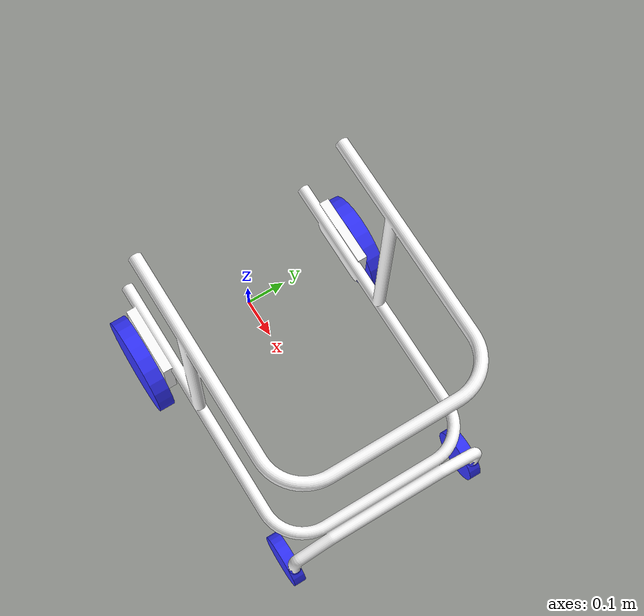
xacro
<?xml version="1.0"?>
<robot xmlns:xacro="http://www.ros.org/wiki/xacro">

  <xacro:include filename="inertial_macros.xacro"/>

  <material name="white">
    <color rgba="1 1 1 1"/>
  </material>

  <material name="orange">
    <color rgba="1 0.3 0.1 1"/>
  </material>

  <material name="blue">
    <color rgba="0.2 0.2 1 1"/>
  </material>

  <material name="black">
    <color rgba="0 0 0 1"/>
  </material>

  <!-- BASE LINK -->
  <link name="base_link">

  </link>

  <!-- Path to mesh -->
  <xacro:property name="mesh_path" value="srs/my_bot/description/girello.stl" />

  <!-- CHASSIS LINK -->
  <joint name="chassis_joint" type="fixed">
    <parent link="base_link"/>
    <child link="chassis"/>
    <origin xyz="-0.1 0 0"/>
  </joint>

  <link name="chassis">
    <visual>
      <origin xyz="0.1 0 0.115" rpy="${pi/2} 0 -${pi/2}"/>
      <geometry>
        <mesh filename="${mesh_path}" scale="0.01 0.01 0.01"/>
      </geometry>
      <material name="white"/>
    </visual>
    <collision>
      <origin xyz="0.4 0 0.115"/>
      <geometry>
        <box size="0.7 0.46 0.15"/>
      </geometry>
    </collision>
    <xacro:inertial_box mass="0.5" x="0.5" y="0.7" z="0.15">
      <origin xyz="0.15 0 0.115" rpy="0 0 0"/>
    </xacro:inertial_box>
  </link>

  <gazebo reference="chassis">
    <material>Gazebo/White</material>
  </gazebo>

  <!-- LEFT WHEEL LINK -->
  <joint name="left_wheel_joint" type="continuous">
    <parent link="base_link"/>
    <child link="left_wheel"/>
    <origin xyz="0 0.307 0" rpy="-${pi/2} 0 0"/>
    <axis xyz="0 0 1"/>
  </joint>

  <link name="left_wheel">
    <visual>
      <geometry>
        <cylinder radius="0.125" length="0.04"/>
      </geometry>
      <material name="blue"/>
    </visual>
    <collision>
      <geometry>
        <cylinder radius="0.125" length="0.04"/>
      </geometry>
    </collision>
    <xacro:inertial_cylinder mass="0.1" length="0.04" radius="0.05">
      <origin xyz="0 0 0" rpy="0 0 0"/>
    </xacro:inertial_cylinder>
  </link>

  <gazebo reference="left_wheel">
    <material>Gazebo/Blue</material>
  </gazebo>

  <!-- RIGHT WHEEL LINK -->
  <joint name="right_wheel_joint" type="continuous">
    <parent link="base_link"/>
    <child link="right_wheel"/>
    <origin xyz="0 -0.307 0" rpy="${pi/2} 0 0"/>
    <axis xyz="0 0 -1"/>
  </joint>

  <link name="right_wheel">
    <visual>
      <geometry>
        <cylinder radius="0.125" length="0.04"/>
      </geometry>
      <material name="blue"/>
    </visual>
    <collision>
      <geometry>
        <cylinder radius="0.125" length="0.04"/>
      </geometry>
    </collision>
    <xacro:inertial_cylinder mass="0.1" length="0.04" radius="0.05">
      <origin xyz="0 0 0" rpy="0 0 0"/>
    </xacro:inertial_cylinder>
  </link>

  <gazebo reference="right_wheel">
    <material>Gazebo/Blue</material>
  </gazebo>

  <!-- LEFT FORK LINK -->
  <joint name="left_fork_joint" type="continuous">
    <parent link="chassis"/>
    <child link="left_fork"/>
    <origin xyz="0.73 0.25 0.03" rpy="0 0 0"/>
    <axis xyz="0 0 1"/>
  </joint>

  <link name="left_fork">
    <visual>
      <geometry>
        <cylinder radius="0.015" length="0.04"/>
      </geometry>
      <material name="blue"/>
    </visual>
    <xacro:inertial_cylinder mass="0.1" length="0.04" radius="0.015">
      <origin xyz="0 0 0" rpy="0 0 0"/>
    </xacro:inertial_cylinder>
  </link>

  <gazebo reference="left_fork">
    <material>Gazebo/Blue</material>
    <mu1 value="0.01"/>
    <mu2 value="0.01"/>
  </gazebo>

  <!-- LEFT CASTER WHEEL LINK -->
    <joint name="left_cast_wheel_joint" type="continuous">
    <parent link="left_fork"/>
    <child link="left_caster_wheel"/>
    <origin xyz="-0.04 0 -0.0875" rpy="${pi/2} 0 0"/>
    <axis xyz="0 0 -1"/>
  </joint>

   <link name="left_caster_wheel">
    <visual>
      <geometry>
        <cylinder radius="0.0675" length="0.03"/>
      </geometry>
      <material name="blue"/>
    </visual>
    <collision>
      <geometry>
        <cylinder radius="0.0675" length="0.03"/>
      </geometry>
    </collision>
    <xacro:inertial_cylinder mass="0.1" length="0.03" radius="0.0675">
      <origin xyz="0 0 0" rpy="0 0 0"/>
    </xacro:inertial_cylinder>
  </link>

  <gazebo reference="left_caster_wheel">
    <material>Gazebo/Blue</material>
  </gazebo>

    <!-- RIGHT FORK LINK -->
  <joint name="right_fork_joint" type="continuous">
    <parent link="chassis"/>
    <child link="right_fork"/>
    <origin xyz="0.73 -0.25 0.03" rpy="0 0 0"/>
    <axis xyz="0 0 1"/>
  </joint>

  <link name="right_fork">
        <visual>
      <geometry>
        <cylinder radius="0.015" length="0.04"/>
      </geometry>
      <material name="blue"/>
    </visual>
    <xacro:inertial_cylinder mass="0.1" length="0.04" radius="0.015">
      <origin xyz="0 0 0" rpy="0 0 0"/>
    </xacro:inertial_cylinder>
  </link>

  <gazebo reference="right_fork">
    <material>Gazebo/Blue</material>
    <mu1 value="0.01"/>
    <mu2 value="0.01"/>
  </gazebo>

  <!-- RIGHT CASTER WHEEL LINK -->
    <joint name="right_cast_wheel_joint" type="continuous">
    <parent link="right_fork"/>
    <child link="right_caster_wheel"/>
    <origin xyz="-0.04 0 -0.0875" rpy="${pi/2} 0 0"/>
    <axis xyz="0 0 -1"/>
  </joint>

   <link name="right_caster_wheel">
    <visual>
      <geometry>
        <cylinder radius="0.0675" length="0.03"/>
      </geometry>
      <material name="blue"/>
    </visual>
    <collision>
      <geometry>
        <cylinder radius="0.0675" length="0.03"/>
      </geometry>
    </collision>
    <xacro:inertial_cylinder mass="0.1" length="0.03" radius="0.0675">
      <origin xyz="0 0 0" rpy="0 0 0"/>
    </xacro:inertial_cylinder>
  </link>

  <gazebo reference="right_caster_wheel">
    <material>Gazebo/Blue</material>
  </gazebo>

</robot>
